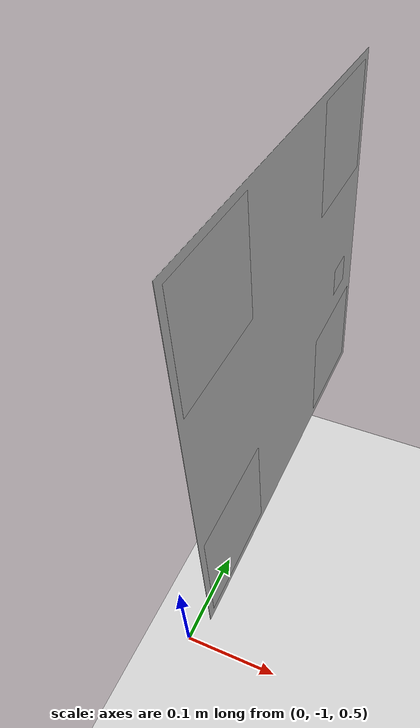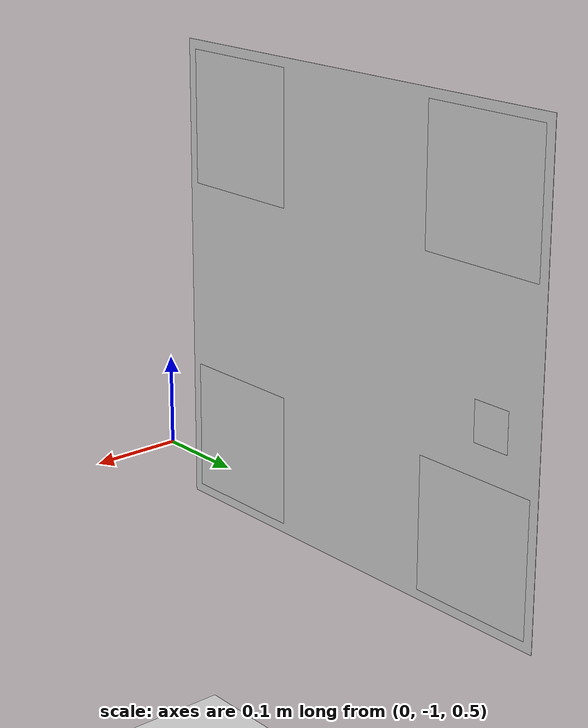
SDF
<?xml version="1.0" ?>
<sdf version="1.4">
  <!-- We use a custom world for the rrbot so that the camera angle is launched correctly -->

  <world name="default">
    <!-- Physics system -->
    <plugin filename="libignition-gazebo-physics-system.so"
	    name="ignition::gazebo::systems::Physics"/>

    <!-- Allows models to be spawned, moved and deleted -->
    <plugin filename="libignition-gazebo-user-commands-system.so"
	    name="ignition::gazebo::systems::UserCommands"/>

    <!-- Publishes world / scene state -->
    <plugin filename="libignition-gazebo-scene-broadcaster-system.so"
	    name="ignition::gazebo::systems::SceneBroadcaster"/>

    <!-- Required for simulated camera sensors -->
    <plugin filename="libignition-gazebo-sensors-system.so"
	    name="ignition::gazebo::systems::Sensors">
      <render_engine>ogre2</render_engine>
    </plugin>

    <!-- Included light -->
    <include>
      <uri>https://fuel.gazebosim.org/1.0/OpenRobotics/models/Sun</uri>
    </include>

    <!-- Included model -->
    <include>
      <uri>https://fuel.gazebosim.org/1.0/OpenRobotics/models/Ground Plane</uri>
    </include>

    <include>
      <uri>
        model://arucotag
      </uri>
      <name>arucotag</name>
      <pose>0 -0.707 0.707 0 1.57 0</pose>
    </include>

    <!-- Standalone camera for ArUco detection -->
    <include>
      <uri>model://simulated_camera</uri>
      <name>simulated_camera</name>
      <pose>0.35 -0.707 0.707 0 0 3.14159</pose>

    </include>

    <gravity>0 0 0</gravity>

    <!-- Focus camera on tall pendulum -->
    <gui fullscreen='0'>
      <camera name='user_camera'>
        <pose>4.927360 -4.376610 3.740080 0.000000 0.275643 2.356190</pose>
        <view_controller>orbit</view_controller>
      </camera>
    </gui>

    <!-- World control -->

  </world>
</sdf>

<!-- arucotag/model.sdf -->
<sdf version='1.9'>
  <model name='arucotag'>
    <static>true</static>
    <pose>0 0 0.001 0 0 0</pose>
    <link name='base'>
      <visual name='background_visual'>
        <geometry>
          <plane>
            <normal>0 0 1</normal>
            <size>0.5 0.5</size>
          </plane>
        </geometry>
        <material>
          <diffuse>1 1 1 1</diffuse>
          <specular>0.2 0.2 0.2 1</specular>
        </material>
      </visual>
      <visual name='tag_0_visual'>
        <pose>0.17 0.17 0.0002 0 0 0</pose>
        <geometry>
          <plane>
            <normal>0 0 1</normal>
            <size>0.14 0.14</size>
          </plane>
        </geometry>
        <material>
          <diffuse>1 1 1 1</diffuse>
          <specular>0.4 0.4 0.4 1</specular>
          <pbr>
            <metal>
              <albedo_map>model://arucotag/aruco_0.png</albedo_map>
            </metal>
          </pbr>
        </material>
      </visual>
      <visual name='tag_1_visual'>
        <pose>-0.17 0.17 0.0002 0 0 0</pose>
        <geometry>
          <plane>
            <normal>0 0 1</normal>
            <size>0.14 0.14</size>
          </plane>
        </geometry>
        <material>
          <diffuse>1 1 1 1</diffuse>
          <specular>0.4 0.4 0.4 1</specular>
          <pbr>
            <metal>
              <albedo_map>model://arucotag/aruco_1.png</albedo_map>
            </metal>
          </pbr>
        </material>
      </visual>
      <visual name='tag_2_visual'>
        <pose>-0.17 -0.17 0.0002 0 0 0</pose>
        <geometry>
          <plane>
            <normal>0 0 1</normal>
            <size>0.14 0.14</size>
          </plane>
        </geometry>
        <material>
          <diffuse>1 1 1 1</diffuse>
          <specular>0.4 0.4 0.4 1</specular>
          <pbr>
            <metal>
              <albedo_map>model://arucotag/aruco_2.png</albedo_map>
            </metal>
          </pbr>
        </material>
      </visual>
      <visual name='tag_3_visual'>
        <pose>0.17 -0.17 0.0002 0 0 0</pose>
        <geometry>
          <plane>
            <normal>0 0 1</normal>
            <size>0.14 0.14</size>
          </plane>
        </geometry>
        <material>
          <diffuse>1 1 1 1</diffuse>
          <specular>0.4 0.4 0.4 1</specular>
          <pbr>
            <metal>
              <albedo_map>model://arucotag/aruco_3.png</albedo_map>
            </metal>
          </pbr>
        </material>
      </visual>
      <visual name='tag_4_visual'>
        <pose>0.0 0.11 0.0002 0 0 0</pose>
        <geometry>
          <plane>
            <normal>0 0 1</normal>
            <size>0.07 0.07</size>
          </plane>
        </geometry>
        <material>
          <diffuse>1 1 1 1</diffuse>
          <specular>0.4 0.4 0.4 1</specular>
          <pbr>
            <metal>
              <albedo_map>model://arucotag/aruco_4.png</albedo_map>
            </metal>
          </pbr>
        </material>
      </visual>
      <visual name='tag_5_visual'>
        <pose>-0.11 0.0 0.0002 0 0 0</pose>
        <geometry>
          <plane>
            <normal>0 0 1</normal>
            <size>0.07 0.07</size>
          </plane>
        </geometry>
        <material>
          <diffuse>1 1 1 1</diffuse>
          <specular>0.4 0.4 0.4 1</specular>
          <pbr>
            <metal>
              <albedo_map>model://arucotag/aruco_5.png</albedo_map>
            </metal>
          </pbr>
        </material>
      </visual>
      <visual name='tag_6_visual'>
        <pose>0.0 -0.11 0.0002 0 0 0</pose>
        <geometry>
          <plane>
            <normal>0 0 1</normal>
            <size>0.07 0.07</size>
          </plane>
        </geometry>
        <material>
          <diffuse>1 1 1 1</diffuse>
          <specular>0.4 0.4 0.4 1</specular>
          <pbr>
            <metal>
              <albedo_map>model://arucotag/aruco_6.png</albedo_map>
            </metal>
          </pbr>
        </material>
      </visual>
      <visual name='tag_7_visual'>
        <pose>0.11 0.0 0.0002 0 0 0</pose>
        <geometry>
          <plane>
            <normal>0 0 1</normal>
            <size>0.07 0.07</size>
          </plane>
        </geometry>
        <material>
          <diffuse>1 1 1 1</diffuse>
          <specular>0.4 0.4 0.4 1</specular>
          <pbr>
            <metal>
              <albedo_map>model://arucotag/aruco_7.png</albedo_map>
            </metal>
          </pbr>
        </material>
      </visual>
      <visual name='tag_8_visual'>
        <pose>0.0 0.045 0.0002 0 0 0</pose>
        <geometry>
          <plane>
            <normal>0 0 1</normal>
            <size>0.025 0.025</size>
          </plane>
        </geometry>
        <material>
          <diffuse>1 1 1 1</diffuse>
          <specular>0.4 0.4 0.4 1</specular>
          <pbr>
            <metal>
              <albedo_map>model://arucotag/aruco_8.png</albedo_map>
            </metal>
          </pbr>
        </material>
      </visual>
      <visual name='tag_9_visual'>
        <pose>-0.045 0.0 0.0002 0 0 0</pose>
        <geometry>
          <plane>
            <normal>0 0 1</normal>
            <size>0.025 0.025</size>
          </plane>
        </geometry>
        <material>
          <diffuse>1 1 1 1</diffuse>
          <specular>0.4 0.4 0.4 1</specular>
          <pbr>
            <metal>
              <albedo_map>model://arucotag/aruco_9.png</albedo_map>
            </metal>
          </pbr>
        </material>
      </visual>
      <visual name='tag_10_visual'>
        <pose>0.0 -0.045 0.0002 0 0 0</pose>
        <geometry>
          <plane>
            <normal>0 0 1</normal>
            <size>0.025 0.025</size>
          </plane>
        </geometry>
        <material>
          <diffuse>1 1 1 1</diffuse>
          <specular>0.4 0.4 0.4 1</specular>
          <pbr>
            <metal>
              <albedo_map>model://arucotag/aruco_10.png</albedo_map>
            </metal>
          </pbr>
        </material>
      </visual>
      <visual name='tag_11_visual'>
        <pose>0.045 0.0 0.0002 0 0 0</pose>
        <geometry>
          <plane>
            <normal>0 0 1</normal>
            <size>0.025 0.025</size>
          </plane>
        </geometry>
        <material>
          <diffuse>1 1 1 1</diffuse>
          <specular>0.4 0.4 0.4 1</specular>
          <pbr>
            <metal>
              <albedo_map>model://arucotag/aruco_11.png</albedo_map>
            </metal>
          </pbr>
        </material>
      </visual>
      <visual name='tag_12_visual'>
        <pose>0.0 0.0 0.0002 0 0 0</pose>
        <geometry>
          <plane>
            <normal>0 0 1</normal>
            <size>0.018 0.018</size>
          </plane>
        </geometry>
        <material>
          <diffuse>1 1 1 1</diffuse>
          <specular>0.4 0.4 0.4 1</specular>
          <pbr>
            <metal>
              <albedo_map>model://arucotag/aruco_12.png</albedo_map>
            </metal>
          </pbr>
        </material>
      </visual>
      <!-- Small, flat drawing of the positive board axes.  It sits in the
           marker-free gap between the two large +Y-side tags. -->
      <visual name='board_positive_axes_drawing'>
        <pose>0.045 0.190 0.0005 0 0 0</pose>
        <geometry>
          <plane>
            <normal>0 0 1</normal>
            <size>0.042 0.042</size>
          </plane>
        </geometry>
        <material>
          <diffuse>1 1 1 1</diffuse>
          <specular>0 0 0 1</specular>
          <pbr>
            <metal>
              <albedo_map>model://arucotag/board_axes_xy.png</albedo_map>
            </metal>
          </pbr>
        </material>
      </visual>
    </link>
  </model>
</sdf>

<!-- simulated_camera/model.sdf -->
<sdf version="1.9">

  <model name="simulated_camera">

    <static>true</static>

    <link name="camera_link">

      <sensor name="camera" type="camera">

        <always_on>true</always_on>
        <update_rate>30</update_rate>

        <topic>simulated_camera</topic>

        <camera name="camera">
          <horizontal_fov>1.047</horizontal_fov>

          <image>
            <width>640</width>
            <height>480</height>
            <format>R8G8B8</format>
          </image>

          <clip>
            <near>0.02</near>
            <far>10.0</far>
          </clip>

        </camera>

      </sensor>

    </link>

  </model>

</sdf>
